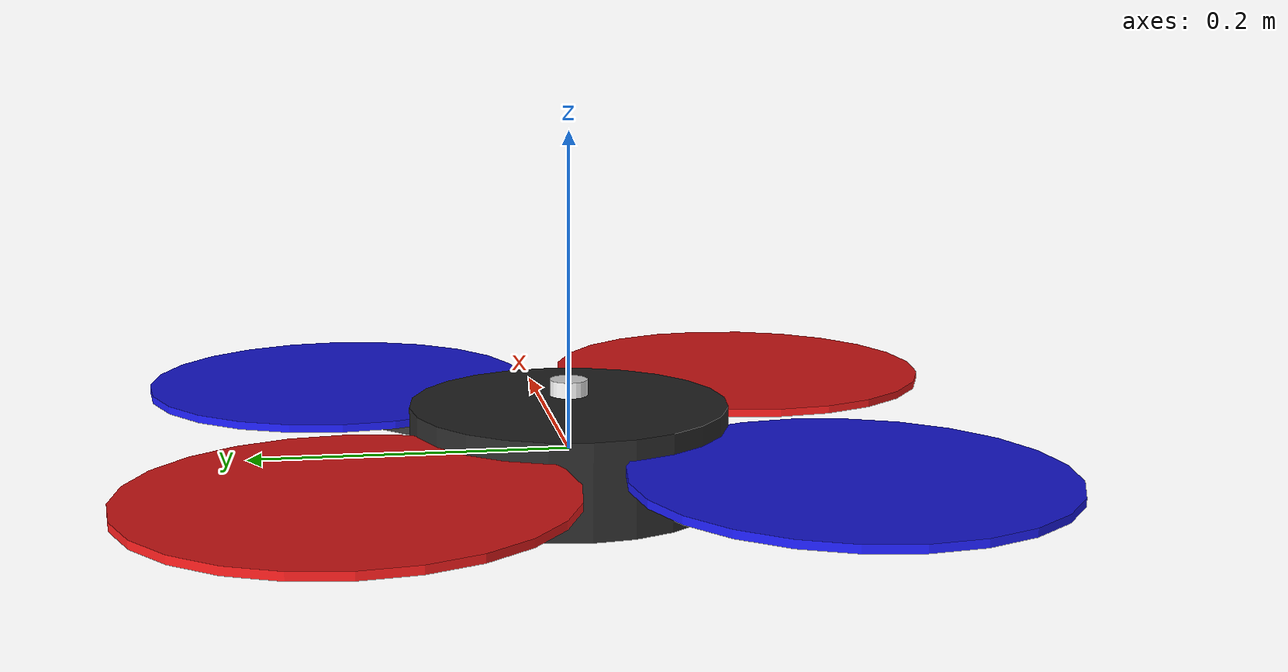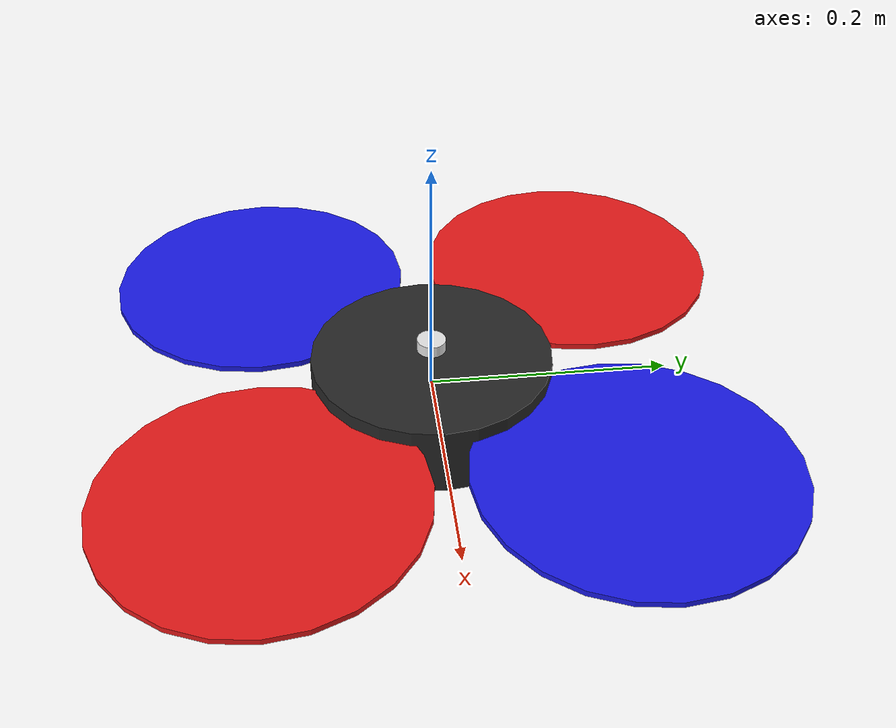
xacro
<?xml version="1.0"?>
<robot xmlns:xacro="http://www.ros.org/wiki/xacro" name="drone">

  <xacro:include filename="drone_body.xacro"/>
  <xacro:include filename="drone_camera.xacro"/>
  <xacro:include filename="drone_gps.xacro"/>
  <xacro:include filename="drone_imu.xacro"/>
  <xacro:include filename="drone_plugins.xacro"/>

</robot>

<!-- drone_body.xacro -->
<robot xmlns:xacro="http://www.ros.org/wiki/xacro">

  <!-- === Dimensions & mass === -->
  <xacro:property name="arm_length"  value="0.20"/>
  <xacro:property name="rotor_xy"    value="0.141"/>  <!-- arm_length * cos(45°) -->
  <xacro:property name="rotor_z"     value="0.015"/>  <!-- slightly above body center -->
  <xacro:property name="body_mass"   value="1.5"/>
  <xacro:property name="rotor_mass"  value="0.005"/>

  <!-- === Base body (central hub + 4 arms as visuals) === -->
  <link name="drone_base_link">

    <!-- Central hub -->
    <visual>
      <origin xyz="0 0 0" rpy="0 0 0"/>
      <geometry><cylinder radius="0.10" length="0.06"/></geometry>
      <material name="drone_body">
        <color rgba="0.15 0.15 0.15 1.0"/>
      </material>
    </visual>

    <!-- Arm 0 : center → front-left  (NW, +x +y, 45°) -->
    <visual>
      <origin xyz="${rotor_xy/2} ${rotor_xy/2} 0" rpy="0 0 ${pi/4}"/>
      <geometry><box size="${arm_length * 1.414} 0.018 0.018"/></geometry>
      <material name="drone_arm"><color rgba="0.20 0.20 0.20 1.0"/></material>
    </visual>
    <!-- Arm 1 : center → front-right (NE, +x -y, -45°) -->
    <visual>
      <origin xyz="${rotor_xy/2} ${-rotor_xy/2} 0" rpy="0 0 ${-pi/4}"/>
      <geometry><box size="${arm_length * 1.414} 0.018 0.018"/></geometry>
      <material name="drone_arm"/>
    </visual>
    <!-- Arm 2 : center → back-left   (SW, -x +y, 135°) -->
    <visual>
      <origin xyz="${-rotor_xy/2} ${rotor_xy/2} 0" rpy="0 0 ${3*pi/4}"/>
      <geometry><box size="${arm_length * 1.414} 0.018 0.018"/></geometry>
      <material name="drone_arm"/>
    </visual>
    <!-- Arm 3 : center → back-right  (SE, -x -y, -135°) -->
    <visual>
      <origin xyz="${-rotor_xy/2} ${-rotor_xy/2} 0" rpy="0 0 ${-3*pi/4}"/>
      <geometry><box size="${arm_length * 1.414} 0.018 0.018"/></geometry>
      <material name="drone_arm"/>
    </visual>

    <collision>
      <origin xyz="0 0 0" rpy="0 0 0"/>
      <geometry><cylinder radius="0.10" length="0.06"/></geometry>
    </collision>

    <inertial>
      <mass value="${body_mass}"/>
      <!-- Empirically validated inertia for a 1.5 kg quadrotor (Gazebo X3 class) -->
      <inertia ixx="0.029125" ixy="0" ixz="0"
               iyy="0.029125" iyz="0"
               izz="0.055225"/>
    </inertial>
  </link>

  <!-- === Rotor macro (continuous joint, thin disc) === -->
  <xacro:macro name="rotor" params="id x y z color_rgba">
    <joint name="drone_rotor_${id}_joint" type="continuous">
      <parent link="drone_base_link"/>
      <child  link="drone_rotor_${id}"/>
      <origin xyz="${x} ${y} ${z}" rpy="0 0 0"/>
      <axis   xyz="0 0 1"/>
      <limit  effort="1000" velocity="838"/>
      <dynamics damping="0.004" friction="0.0"/>
    </joint>

    <link name="drone_rotor_${id}">
      <visual>
        <origin xyz="0 0 0" rpy="0 0 0"/>
        <geometry><cylinder radius="0.128" length="0.005"/></geometry>
        <material name="rotor_mat_${id}">
          <color rgba="${color_rgba}"/>
        </material>
      </visual>
      <collision>
        <origin xyz="0 0 0" rpy="0 0 0"/>
        <geometry><cylinder radius="0.128" length="0.005"/></geometry>
      </collision>
      <inertial>
        <mass value="${rotor_mass}"/>
        <inertia ixx="1.75e-5" ixy="0" ixz="0"
                 iyy="1.75e-5" iyz="0"
                 izz="3.50e-5"/>
      </inertial>
    </link>
  </xacro:macro>

  <xacro:rotor id="0" x="${rotor_xy}"  y="${rotor_xy}"  z="${rotor_z}" color_rgba="0.1 0.1 0.9 1.0"/>
  <xacro:rotor id="1" x="${rotor_xy}"  y="${-rotor_xy}" z="${rotor_z}" color_rgba="0.9 0.1 0.1 1.0"/>
  <xacro:rotor id="2" x="${-rotor_xy}" y="${rotor_xy}"  z="${rotor_z}" color_rgba="0.9 0.1 0.1 1.0"/>
  <xacro:rotor id="3" x="${-rotor_xy}" y="${-rotor_xy}" z="${rotor_z}" color_rgba="0.1 0.1 0.9 1.0"/>

</robot>

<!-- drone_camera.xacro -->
<robot xmlns:xacro="http://www.ros.org/wiki/xacro">

  <joint name="drone_camera_joint" type="fixed">
    <parent link="drone_base_link"/>
    <child  link="drone_camera_link"/>
    <!-- Bottom-center of body, pitched down 90° so lens faces −Z -->
    <origin xyz="0 0 -0.04" rpy="0 ${pi/2} 0"/>
  </joint>

  <link name="drone_camera_link">
    <visual>
      <origin xyz="0 0 0" rpy="0 0 0"/>
      <geometry><box size="0.025 0.025 0.025"/></geometry>
      <material name="cam_black"><color rgba="0.05 0.05 0.05 1.0"/></material>
    </visual>
    <inertial>
      <mass value="0.010"/>
      <inertia ixx="1e-5" ixy="0" ixz="0" iyy="1e-5" iyz="0" izz="1e-5"/>
    </inertial>
  </link>

  <!-- Optical frame: ROS convention (Z forward = camera optical axis) -->
  <joint name="drone_camera_optical_joint" type="fixed">
    <parent link="drone_camera_link"/>
    <child  link="drone_camera_optical"/>
    <origin xyz="0 0 0" rpy="${-pi/2} 0 ${-pi/2}"/>
  </joint>
  <link name="drone_camera_optical"/>

  <!-- Gazebo sensor definition -->
  <gazebo reference="drone_camera_link">
    <sensor name="drone_camera" type="camera">
      <pose>0 0 0 0 0 0</pose>
      <visualize>true</visualize>
      <update_rate>10</update_rate>
      <camera>
        <!-- 60° horizontal FOV — good trade-off between coverage and resolution -->
        <horizontal_fov>1.047</horizontal_fov>
        <image>
          <format>R8G8B8</format>
          <width>640</width>
          <height>480</height>
        </image>
        <clip>
          <near>0.1</near>
          <far>200.0</far>
        </clip>
      </camera>
      <topic>drone/camera</topic>
      <gz_frame_id>drone_camera_optical</gz_frame_id>
    </sensor>
  </gazebo>

</robot>

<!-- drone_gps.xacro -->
<robot xmlns:xacro="http://www.ros.org/wiki/xacro">

  <joint name="drone_gnss_joint" type="fixed">
    <parent link="drone_base_link"/>
    <child  link="drone_gnss_frame"/>
    <origin xyz="0 0 0.04" rpy="0 0 0"/>
  </joint>

  <link name="drone_gnss_frame">
    <visual>
      <geometry><cylinder radius="0.012" length="0.010"/></geometry>
      <material name="gps_white"><color rgba="0.9 0.9 0.9 1.0"/></material>
    </visual>
    <inertial>
      <mass value="0.001"/>
      <inertia ixx="1e-7" ixy="0" ixz="0" iyy="1e-7" iyz="0" izz="1e-7"/>
    </inertial>
  </link>

  <gazebo reference="drone_gnss_frame">
    <sensor name="drone_gnss" type="navsat">
      <pose>0 0 0 0 0 0</pose>
      <topic>drone/gnss/fix</topic>
      <gz_frame_id>drone_gnss_frame</gz_frame_id>
      <update_rate>5</update_rate>
      <navsat>
        <position_sensing>
          <horizontal>
            <noise type="gaussian">
              <mean>0.0</mean>
              <stddev>0.0002</stddev>
            </noise>
          </horizontal>
          <vertical>
            <noise type="gaussian">
              <mean>0.0</mean>
              <stddev>0.0003</stddev>
            </noise>
          </vertical>
        </position_sensing>
        <velocity_sensing>
          <noise type="gaussian">
            <mean>0.0</mean>
            <stddev>0.001</stddev>
          </noise>
        </velocity_sensing>
      </navsat>
      <visualize>false</visualize>
    </sensor>
  </gazebo>

</robot>

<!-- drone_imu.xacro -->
<robot xmlns:xacro="http://www.ros.org/wiki/xacro">

  <joint name="drone_imu_joint" type="fixed">
    <parent link="drone_base_link"/>
    <child  link="drone_imu_link"/>
    <origin xyz="0 0 0" rpy="0 0 0"/>
  </joint>

  <link name="drone_imu_link">
    <visual>
      <origin xyz="0 0 0" rpy="0 0 0"/>
      <geometry><box size="0.015 0.015 0.008"/></geometry>
      <material name="imu_mat"><color rgba="0.0 0.8 0.0 1.0"/></material>
    </visual>
    <inertial>
      <mass value="0.001"/>
      <inertia ixx="1e-7" ixy="0" ixz="0" iyy="1e-7" iyz="0" izz="1e-7"/>
    </inertial>
  </link>

  <gazebo reference="drone_imu_link">
    <sensor name="drone_imu" type="imu">
      <always_on>true</always_on>
      <update_rate>200</update_rate>
      <topic>drone/imu</topic>
      <gz_frame_id>drone_imu_link</gz_frame_id>
      <imu>
        <orientation_enabled>true</orientation_enabled>
        <angular_velocity>
          <x><noise type="gaussian"><mean>0.0</mean><stddev>2e-4</stddev></noise></x>
          <y><noise type="gaussian"><mean>0.0</mean><stddev>2e-4</stddev></noise></y>
          <z><noise type="gaussian"><mean>0.0</mean><stddev>2e-4</stddev></noise></z>
        </angular_velocity>
        <linear_acceleration>
          <x><noise type="gaussian"><mean>0.0</mean><stddev>1.7e-2</stddev></noise></x>
          <y><noise type="gaussian"><mean>0.0</mean><stddev>1.7e-2</stddev></noise></y>
          <z><noise type="gaussian"><mean>0.0</mean><stddev>1.7e-2</stddev></noise></z>
        </linear_acceleration>
      </imu>
    </sensor>
  </gazebo>

</robot>
